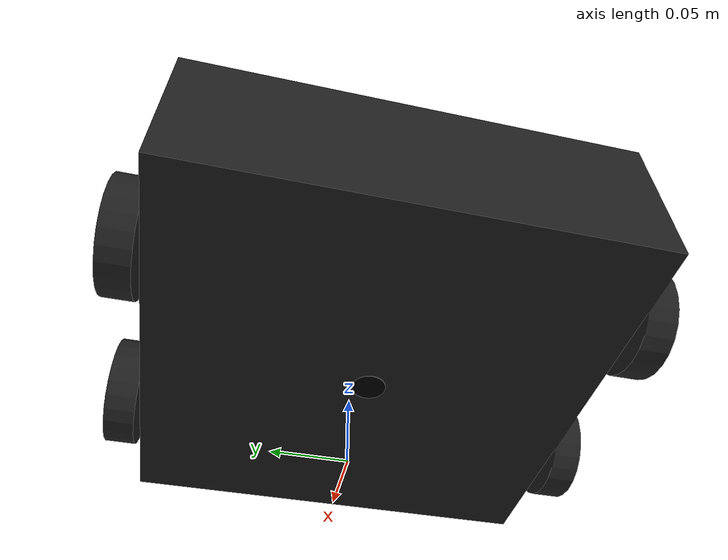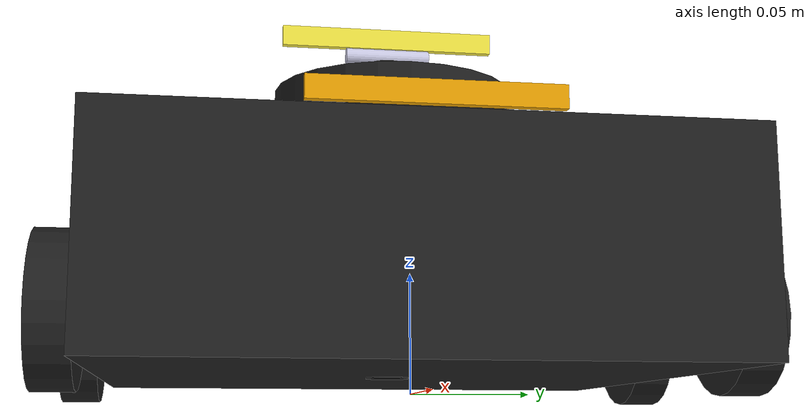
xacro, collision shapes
<?xml version="1.0" ?>
<robot name="turtlebot3_waffle" xmlns:xacro="http://ros.org/wiki/xacro">
  <xacro:include filename="$(find turtlebot3_description)/urdf/common_properties.xacro"/>
  <xacro:include filename="$(find aslam_bringup)/launch/turtlebot3_simulation/urdf/turtlebot3_waffle.gazebo.xacro"/>

  <xacro:property name="r200_cam_rgb_px" value="0.005"/>
  <xacro:property name="r200_cam_rgb_py" value="0.018"/>
  <xacro:property name="r200_cam_rgb_pz" value="0.013"/>
  <xacro:property name="r200_cam_depth_offset" value="0.01"/>

  <xacro:property name="telescopic_extension_length" value="0.15"/>

  <link name="base_footprint"/>

  <joint name="base_joint" type="fixed">
    <parent link="base_footprint"/>
    <child link="base_link" />
    <origin xyz="0 0 0.010" rpy="0 0 0"/>
  </joint>

  <link name="base_link">
    <visual>
      <origin xyz="-0.064 0 0.0" rpy="0 0 0"/>
      <geometry>
        <mesh filename="package://turtlebot3_description/meshes/bases/waffle_base.stl" scale="0.001 0.001 0.001"/>
      </geometry>
      <material name="light_black"/>
    </visual>

    <collision>
      <origin xyz="-0.064 0 0.047" rpy="0 0 0"/>
      <geometry>
        <box size="0.266 0.266 0.094"/>
      </geometry>
    </collision>

    <inertial>
      <origin xyz="-0.064 0 0.047" rpy="0 0 0"/>
      <mass value="1.3729096e+00"/>
      <inertia ixx="8.7002718e-03" ixy="-4.7576583e-05" ixz="1.1160499e-04"
               iyy="8.6195418e-03" iyz="-3.5422299e-06"
               izz="1.4612727e-02" />
    </inertial>
  </link>

  <joint name="wheel_left_joint" type="continuous">
    <parent link="base_link"/>
    <child link="wheel_left_link"/>
    <origin xyz="0.0 0.144 0.023" rpy="-1.57 0 0"/>
    <axis xyz="0 0 1"/>
  </joint>

  <link name="wheel_left_link">
    <visual>
      <origin xyz="0 0 0" rpy="1.57 0 0"/>
      <geometry>
        <mesh filename="package://turtlebot3_description/meshes/wheels/left_tire.stl" scale="0.001 0.001 0.001"/>
      </geometry>
      <material name="dark"/>
    </visual>

    <collision>
      <origin xyz="0 0 0" rpy="0 0 0"/>
      <geometry>
        <cylinder length="0.018" radius="0.033"/>
      </geometry>
    </collision>

    <inertial>
      <origin xyz="0 0 0" />
      <mass value="2.8498940e-02" />
      <inertia ixx="1.1175580e-05" ixy="-4.2369783e-11" ixz="-5.9381719e-09"
               iyy="1.1192413e-05" iyz="-1.4400107e-11"
               izz="2.0712558e-05" />
    </inertial>
  </link>

  <joint name="wheel_right_joint" type="continuous">
    <parent link="base_link"/>
    <child link="wheel_right_link"/>
    <origin xyz="0.0 -0.144 0.023" rpy="-1.57 0 0"/>
    <axis xyz="0 0 1"/>
  </joint>

  <link name="wheel_right_link">
    <visual>
      <origin xyz="0 0 0" rpy="1.57 0 0"/>
      <geometry>
        <mesh filename="package://turtlebot3_description/meshes/wheels/right_tire.stl" scale="0.001 0.001 0.001"/>
      </geometry>
      <material name="dark"/>
    </visual>

    <collision>
      <origin xyz="0 0 0" rpy="0 0 0"/>
      <geometry>
        <cylinder length="0.018" radius="0.033"/>
      </geometry>
    </collision>

    <inertial>
      <origin xyz="0 0 0" />
      <mass value="2.8498940e-02" />
      <inertia ixx="1.1175580e-05" ixy="-4.2369783e-11" ixz="-5.9381719e-09"
               iyy="1.1192413e-05" iyz="-1.4400107e-11"
               izz="2.0712558e-05" />
    </inertial>
  </link>

  <joint name="caster_back_right_joint" type="fixed">
    <parent link="base_link"/>
    <child link="caster_back_right_link"/>
    <origin xyz="-0.128 -0.144 0.023" rpy="-1.57 0 0"/>
  </joint>

  <link name="caster_back_right_link">
    <visual>
      <origin xyz="0 0 0" rpy="1.57 0 0"/>
      <geometry>
        <mesh filename="package://turtlebot3_description/meshes/wheels/right_tire.stl" scale="0.001 0.001 0.001"/>
      </geometry>
      <material name="dark"/>
    </visual>

    <collision>
      <origin xyz="0 0 0" rpy="0 0 0"/>
      <geometry>
        <cylinder length="0.018" radius="0.033"/>
      </geometry>
    </collision>

    <inertial>
      <origin xyz="0 0 0" rpy="0 0 0"/>
      <mass value="0.029" />
      <inertia ixx="0.000008678" ixy="0.0" ixz="0.0"
               iyy="0.000008678" iyz="0.0"
               izz="0.00001579" />
    </inertial>
  </link>

  <joint name="caster_back_left_joint" type="fixed">
    <parent link="base_link"/>
    <child link="caster_back_left_link"/>
    <origin xyz="-0.128 0.144 0.023" rpy="-1.57 0 0"/>
  </joint>

  <link name="caster_back_left_link">
    <visual>
      <origin xyz="0 0 0" rpy="1.57 0 0"/>
      <geometry>
        <mesh filename="package://turtlebot3_description/meshes/wheels/left_tire.stl" scale="0.001 0.001 0.001"/>
      </geometry>
      <material name="dark"/>
    </visual>

    <collision>
      <origin xyz="0 0 0" rpy="0 0 0"/>
      <geometry>
        <cylinder length="0.018" radius="0.033"/>
      </geometry>
    </collision>

    <inertial>
      <origin xyz="0 0 0" rpy="0 0 0"/>
      <mass value="0.029" />
      <inertia ixx="0.000008678" ixy="0.0" ixz="0.0"
               iyy="0.000008678" iyz="0.0"
               izz="0.00001579" />
    </inertial>
  </link>

  <joint name="imu_joint" type="fixed">
    <parent link="base_link"/>
    <child link="imu_link"/>
    <origin xyz="0.0 0 0.068" rpy="0 0 0"/>
  </joint>

  <link name="imu_link"/>

  <joint name="scan_joint" type="fixed">
    <parent link="base_link"/>
    <child link="base_scan"/>
    <origin xyz="-0.064 0 0.122" rpy="0 0 0"/>
  </joint>

  <link name="base_scan">
    <visual>
      <origin xyz="0 0 0" rpy="0 0 0"/>
      <geometry>
        <mesh filename="package://turtlebot3_description/meshes/sensors/lds.stl" scale="0.001 0.001 0.001"/>
      </geometry>
      <material name="dark"/>
    </visual>

    <collision>
      <origin xyz="0.015 0 -0.0065" rpy="0 0 0"/>
      <geometry>
        <cylinder length="0.0315" radius="0.055"/>
      </geometry>
    </collision>

    <inertial>
      <mass value="0.114" />
      <origin xyz="0 0 0" />
      <inertia ixx="0.001" ixy="0.0" ixz="0.0"
               iyy="0.001" iyz="0.0"
               izz="0.001" />
    </inertial>
  </link>

  <joint name="front_camera_joint" type="fixed">
    <origin xyz="0.064 -0.065 0.094" rpy="0 0 0"/>
    <parent link="base_link"/>
    <child link="front_camera_link"/>
  </joint>

  <link name="front_camera_link">
    <visual>
      <origin xyz="0 0 0" rpy="1.57 0 1.57"/>
      <geometry>
       <mesh filename="package://turtlebot3_description/meshes/sensors/r200.dae" />
      </geometry>
    </visual>

    <collision>
      <origin xyz="0.0 0.065 0.007" rpy="0 0 0"/>
      <geometry>
        <box size="0.0038 0.1016 0.0096"/>
      </geometry>
    </collision>

    <!-- This inertial field needs doesn't contain reliable data!! -->
   <inertial>
      <mass value="0.05" />
      <origin xyz="0.0 0.065 0.007" rpy="0 0 0"/>
      <inertia ixx="0.000043395"  ixy="0.0" ixz="0.0"
               iyy="0.0000004442" iyz="0.0"
               izz="0.00004307" />
    </inertial>
  </link>

  <joint name="front_camera_rgb_joint" type="fixed">
    <origin xyz="${r200_cam_rgb_px} ${r200_cam_rgb_py} ${r200_cam_rgb_pz}" rpy="0 0 0"/>
    <parent link="front_camera_link"/>
    <child link="front_camera_rgb_frame"/>
  </joint>
  <link name="front_camera_rgb_frame"/>

  <joint name="front_camera_rgb_optical_joint" type="fixed">
    <origin xyz="0 0 0" rpy="-1.57 0 -1.57"/>
    <parent link="front_camera_rgb_frame"/>
    <child link="front_camera_rgb_optical_frame"/>
  </joint>
  <link name="front_camera_rgb_optical_frame"/>

  <joint name="front_camera_depth_joint" type="fixed">
    <origin xyz="${r200_cam_rgb_px} ${r200_cam_rgb_py + r200_cam_depth_offset} ${r200_cam_rgb_pz}" rpy="0 0 0"/>
    <parent link="front_camera_link"/>
    <child link="front_camera_depth_frame"/>
  </joint>
  <link name="front_camera_depth_frame"/>

  <joint name="front_camera_depth_optical_joint" type="fixed">
    <origin xyz="0 0 0" rpy="-1.57 0 -1.57"/>
    <parent link="front_camera_depth_frame"/>
    <child link="front_camera_depth_optical_frame"/>
  </joint>
  <link name="front_camera_depth_optical_frame"/>

<!-- Added by Iker -->
  <!-- Pan movement -->
  <joint name="telescopic_arm_base_joint" type="fixed">
    <parent link="base_link"/>
    <child link="telescopic_arm_base_link"/>
    <origin rpy="0 -1.57 0" xyz="-0.064 0 0"/>
  </joint>

  <link name="telescopic_arm_base_link">
    <visual>
      <geometry>
        <cylinder length="0.001" radius=".01"/>
      </geometry>
      <origin rpy="0 1.57 0 " xyz="0 0 0"/>
      <material name="Gray">
        <color rgba="0 0 0 1"/>
      </material>
    </visual>

    <collision>
      <geometry>
        <cylinder length="0.001" radius=".01"/>
      </geometry>
      <origin rpy="0 1.57 0 " xyz="0 0 0"/>
    </collision>

    <inertial>
      <mass value="0.1" />
      <origin xyz="0 0 0" />
      <inertia ixx="0.0000025083" ixy="0.0" ixz="0.0"
               iyy="0.0000025083" iyz="0.0"
               izz="0.000005" />
    </inertial>
  </link>

  <joint name="telescopic_arm_continuous_joint" type="continuous">
    <parent link="telescopic_arm_base_link"/>
    <child link="telescopic_arm_extension_base_link"/>
    <origin rpy="0 0 0" xyz="0.0005 0 0"/>
    <limit effort="0.1" velocity="0.1"/>
  </joint>

  <link name="telescopic_arm_extension_base_link">
    <visual>
      <geometry>
        <mesh filename="package://aslam_bringup/launch/turtlebot3_simulation/meshes/cylinder_150_10_2.stl"/>
      </geometry>
      <origin rpy="0 1.57 0 " xyz="${telescopic_extension_length/2} 0 0"/>
      <material name="Gray">
        <color rgba="0 0 0 1"/>
      </material>
    </visual>

    <collision>
      <geometry>
        <cylinder length="${telescopic_extension_length}" radius=".01"/>
      </geometry>
      <origin rpy="0 1.57 0 " xyz="${telescopic_extension_length/2} 0 0"/>
    </collision>

    <inertial>
      <mass value="0.1" />
      <origin rpy="0 1.57 0 " xyz="${telescopic_extension_length/2} 0 0"/>
      <inertia ixx="0.00019" ixy="0.0" ixz="0.0"
               iyy="0.00019" iyz="0.0"
               izz="0.000005" />
    </inertial>
  </link>

  <!-- Telescopic arm -->
  <joint name="telescopic_arm_extension_1_joint" type="prismatic">
    <parent link="telescopic_arm_extension_base_link"/>
    <child link="telescopic_arm_extension_1_link"/>
    <limit effort="30" lower="0" upper="0.15" velocity="0.05"/>
    <origin rpy="0 0 0" xyz="0 0 0"/>
  </joint>

  <link name="telescopic_arm_extension_1_link">
    <visual>
      <geometry>
        <mesh filename="package://aslam_bringup/launch/turtlebot3_simulation/meshes/cylinder_150_08_2.stl"/>
      </geometry>
      <origin rpy="0 1.57 0 " xyz="${telescopic_extension_length/2} 0 0"/>
      <material name="Gray">
        <color rgba=".2 .2 .2 1"/>
      </material>
    </visual>

    <collision>
      <geometry>
        <cylinder length="${telescopic_extension_length}" radius=".008"/>
      </geometry>
      <origin rpy="0 1.57 0 " xyz="${telescopic_extension_length/2} 0 0"/>
    </collision>

    <inertial>
      <mass value="0.08" />
      <origin rpy="0 1.57 0 " xyz="${telescopic_extension_length/2} 0 0"/>
      <inertia ixx="0.00015128" ixy="0.0" ixz="0.0"
               iyy="0.00015128" iyz="0.0"
               izz="0.00000256" />
    </inertial>
  </link>

  <joint name="telescopic_arm_extension_2_joint" type="prismatic">
    <parent link="telescopic_arm_extension_1_link"/>
    <child link="telescopic_arm_extension_2_link"/>
    <limit effort="30" lower="0" upper="0.15" velocity="0.05"/>
    <origin rpy="0 0 0" xyz="0 0 0"/>
    <mimic joint="telescopic_arm_extension_1_joint"/>
  </joint>

  <link name="telescopic_arm_extension_2_link">
    <visual>
      <geometry>
        <mesh filename="package://aslam_bringup/launch/turtlebot3_simulation/meshes/cylinder_150_06_2.stl"/>
      </geometry>
      <origin rpy="0 1.57 0 " xyz="${telescopic_extension_length/2} 0 0"/>
      <material name="Gray">
        <color rgba=".4 .4 .4 1"/>
      </material>
    </visual>

    <collision>
      <geometry>
        <cylinder length="${telescopic_extension_length}" radius=".006"/>
      </geometry>
      <origin rpy="0 1.57 0 " xyz="${telescopic_extension_length/2} 0 0"/>
    </collision>

    <inertial>
      <mass value="0.06" />
      <origin rpy="0 1.57 0 " xyz="${telescopic_extension_length/2} 0 0"/>
      <inertia ixx="0.00011304" ixy="0.0" ixz="0.0"
               iyy="0.00011304" iyz="0.0"
               izz="0.00000108" />
    </inertial>
  </link>

  <joint name="telescopic_arm_extension_3_joint" type="prismatic">
    <parent link="telescopic_arm_extension_2_link"/>
    <child link="telescopic_arm_extension_3_link"/>
    <limit effort="30" lower="0" upper="0.15" velocity="0.05"/>
    <origin rpy="0 0 0" xyz="0 0 0"/>
    <mimic joint="telescopic_arm_extension_2_joint"/>
  </joint>

  <link name="telescopic_arm_extension_3_link">
    <visual>
      <geometry>
        <cylinder length="${telescopic_extension_length}" radius=".004"/>
      </geometry>
      <origin rpy="0 1.57 0 " xyz="${telescopic_extension_length/2} 0 0"/>
      <material name="Gray">
        <color rgba=".6 .6 .6 1"/>
      </material>
    </visual>

    <collision>
      <geometry>
        <cylinder length="${telescopic_extension_length}" radius=".004"/>
      </geometry>
      <origin rpy="0 1.57 0 " xyz="${telescopic_extension_length/2} 0 0"/>
    </collision>

    <inertial>
      <mass value="0.04" />
      <origin rpy="0 1.57 0 " xyz="${telescopic_extension_length/2} 0 0"/>
      <inertia ixx="0.00007516" ixy="0.0" ixz="0.0"
               iyy="0.00007516" iyz="0.0"
               izz="0.00000032" />
    </inertial>
  </link>

  <!-- Tilt camera -->
  <joint name="top_camera_tilt_joint" type="revolute">
    <parent link="telescopic_arm_extension_3_link"/>
    <child link="top_camera_tilt_link"/>
    <origin xyz="${telescopic_extension_length+0.004} 0 0" rpy="0 1.57 0"/>
    <axis xyz="0 1 0"/>
    <limit effort="0.1" lower="-0.79" upper="0.79" velocity="0.5"/>
  </joint>

  <link name="top_camera_tilt_link">
    <visual>
      <geometry>
        <cylinder length="0.04" radius=".004"/>
      </geometry>
      <origin rpy="-1.57 0 0 " xyz="0 0 0"/>
      <material name="Gray">
        <color rgba=".8 .8 .9 1"/>
      </material>
    </visual>

    <collision>
      <geometry>
        <cylinder length="0.04" radius=".004"/>
      </geometry>
      <origin rpy="-1.57 0 0 " xyz="0 0 0"/>
    </collision>

    <inertial>
      <mass value="0.05" />
      <origin rpy="-1.57 0 0 " xyz="0 0 0"/>
      <inertia ixx="0.000006867" ixy="0.0" ixz="0.0"
               iyy="0.000006867" iyz="0.0"
               izz="0.0000004" />
    </inertial>
  </link>

  <joint name="top_camera_joint" type="fixed">
    <origin xyz="0.0 0.0 0.004" rpy="0 0 0"/>
    <parent link="top_camera_tilt_link"/>
    <child link="top_camera_link"/>
  </joint>

  <link name="top_camera_link">
    <visual>
      <origin xyz="0 -0.065 0" rpy="1.57 0 1.57"/>
      <geometry>
       <mesh filename="package://turtlebot3_description/meshes/sensors/r200.dae" />
      </geometry>
    </visual>

    <collision>
      <origin xyz="0.0 0.0 0.0048" rpy="0 0 0"/>
      <geometry>
        <box size="0.0038 0.1016 0.0096"/>
      </geometry>
    </collision>

    <!-- This inertial field needs doesn't contain reliable data!! -->
   <inertial>
      <mass value="0.05" />
      <origin xyz="0.0 0.0 0.010" rpy="0 0 0" />
      <inertia ixx="0.000043395"  ixy="0.0" ixz="0.0"
               iyy="0.0000004442" iyz="0.0"
               izz="0.00004307" />
    </inertial>
  </link>

  <joint name="top_camera_rgb_joint" type="fixed">
    <origin xyz="${r200_cam_rgb_px} ${r200_cam_rgb_py} ${r200_cam_rgb_pz}" rpy="0 0 0"/>
    <parent link="top_camera_link"/>
    <child link="top_camera_rgb_frame"/>
  </joint>
  <link name="top_camera_rgb_frame"/>

  <joint name="top_camera_rgb_optical_joint" type="fixed">
    <origin xyz="0 0 0" rpy="-1.57 0 -1.57"/>
    <parent link="top_camera_rgb_frame"/>
    <child link="top_camera_rgb_optical_frame"/>
  </joint>
  <link name="top_camera_rgb_optical_frame"/>

  <joint name="top_camera_depth_joint" type="fixed">
    <origin xyz="${r200_cam_rgb_px} ${r200_cam_rgb_py + r200_cam_depth_offset} ${r200_cam_rgb_pz}" rpy="0 0 0"/>
    <parent link="top_camera_link"/>
    <child link="top_camera_depth_frame"/>
  </joint>
  <link name="top_camera_depth_frame"/>

  <joint name="top_camera_depth_optical_joint" type="fixed">
    <origin xyz="0 0 0" rpy="-1.57 0 -1.57"/>
    <parent link="top_camera_depth_frame"/>
    <child link="top_camera_depth_optical_frame"/>
  </joint>
  <link name="top_camera_depth_optical_frame"/>

</robot>
